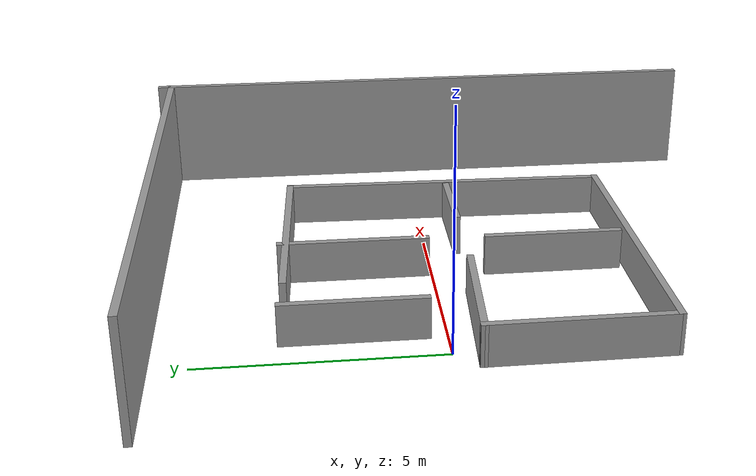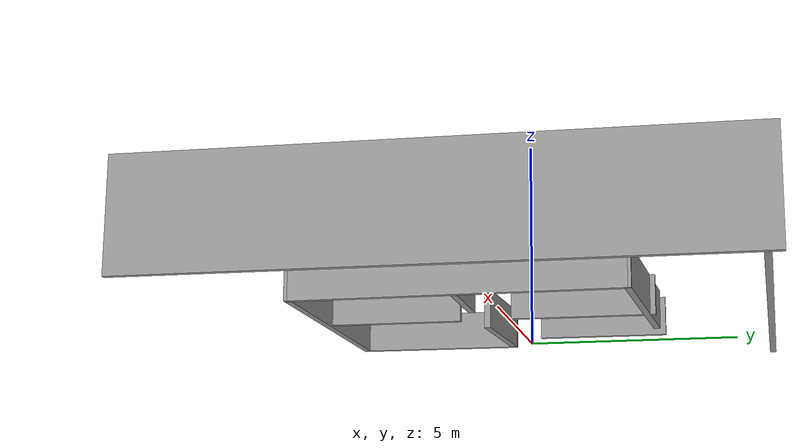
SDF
<?xml version='1.0'?>
<sdf version='1.7'>
  <model name='TMR2024'>
    <pose>3.61024 -0.475486 0 0 -0 0</pose>
    <link name='Wall_0'>
      <collision name='Wall_0_Collision'>
        <geometry>
          <box>
            <size>7 0.15 0.9</size>
          </box>
        </geometry>
        <pose>0 0 0.45 0 -0 0</pose>
      </collision>
      <visual name='Wall_0_Visual'>
        <pose>0 0 0.45 0 -0 0</pose>
        <geometry>
          <box>
            <size>7 0.15 0.9</size>
          </box>
        </geometry>
        <material>
          <script>
            <uri>file://media/materials/scripts/gazebo.material</uri>
            <name>Gazebo/Grey</name>
          </script>
          <ambient>1 1 1 1</ambient>
        </material>
        <meta>
          <layer>0</layer>
        </meta>
      </visual>
      <pose>-0.622244 -3.81451 0 0 -0 3.14159</pose>
    </link>
    <link name='Wall_10'>
      <collision name='Wall_10_Collision'>
        <geometry>
          <box>
            <size>3 0.15 0.9</size>
          </box>
        </geometry>
        <pose>0 0 0.45 0 -0 0</pose>
      </collision>
      <visual name='Wall_10_Visual'>
        <pose>0 0 0.45 0 -0 0</pose>
        <geometry>
          <box>
            <size>3 0.15 0.9</size>
          </box>
        </geometry>
        <material>
          <script>
            <uri>file://media/materials/scripts/gazebo.material</uri>
            <name>Gazebo/Grey</name>
          </script>
          <ambient>1 1 1 1</ambient>
        </material>
        <meta>
          <layer>0</layer>
        </meta>
      </visual>
      <pose>-2.88724 2.31049 0 0 -0 -1.5708</pose>
    </link>
    <link name='Wall_12'>
      <collision name='Wall_12_Collision'>
        <geometry>
          <box>
            <size>2 0.15 0.9</size>
          </box>
        </geometry>
        <pose>0 0 0.45 0 -0 0</pose>
      </collision>
      <visual name='Wall_12_Visual'>
        <pose>0 0 0.45 0 -0 0</pose>
        <geometry>
          <box>
            <size>2 0.15 0.9</size>
          </box>
        </geometry>
        <material>
          <script>
            <uri>file://media/materials/scripts/gazebo.material</uri>
            <name>Gazebo/Grey</name>
          </script>
          <ambient>1 1 1 1</ambient>
        </material>
        <meta>
          <layer>0</layer>
        </meta>
      </visual>
      <pose>1.76676 -0.204514 0 0 -0 0</pose>
    </link>
    <link name='Wall_14'>
      <collision name='Wall_14_Collision'>
        <geometry>
          <box>
            <size>3 0.15 0.9</size>
          </box>
        </geometry>
        <pose>0 0 0.45 0 -0 0</pose>
      </collision>
      <visual name='Wall_14_Visual'>
        <pose>0 0 0.45 0 -0 0</pose>
        <geometry>
          <box>
            <size>3 0.15 0.9</size>
          </box>
        </geometry>
        <material>
          <script>
            <uri>file://media/materials/scripts/gazebo.material</uri>
            <name>Gazebo/Grey</name>
          </script>
          <ambient>1 1 1 1</ambient>
        </material>
        <meta>
          <layer>0</layer>
        </meta>
      </visual>
      <pose>-0.249243 -2.15651 0 0 -0 -1.5708</pose>
    </link>
    <link name='Wall_16'>
      <collision name='Wall_16_Collision'>
        <geometry>
          <box>
            <size>3.25 0.15 0.9</size>
          </box>
        </geometry>
        <pose>0 0 0.45 0 -0 0</pose>
      </collision>
      <visual name='Wall_16_Visual'>
        <pose>0 0 0.45 0 -0 0</pose>
        <geometry>
          <box>
            <size>3.25 0.15 0.9</size>
          </box>
        </geometry>
        <material>
          <script>
            <uri>file://media/materials/scripts/gazebo.material</uri>
            <name>Gazebo/Grey</name>
          </script>
          <ambient>1 1 1 1</ambient>
        </material>
        <meta>
          <layer>0</layer>
        </meta>
      </visual>
      <pose>-0.178244 2.15449 0 0 -0 1.5708</pose>
    </link>
    <link name='Wall_18'>
      <collision name='Wall_18_Collision'>
        <geometry>
          <box>
            <size>12 0.15 2.5</size>
          </box>
        </geometry>
        <pose>0 0 1.25 0 -0 0</pose>
      </collision>
      <visual name='Wall_18_Visual'>
        <pose>0 0 1.25 0 -0 0</pose>
        <geometry>
          <box>
            <size>12 0.15 2.5</size>
          </box>
        </geometry>
        <material>
          <script>
            <uri>file://media/materials/scripts/gazebo.material</uri>
            <name>Gazebo/Grey</name>
          </script>
          <ambient>1 1 1 1</ambient>
        </material>
        <meta>
          <layer>0</layer>
        </meta>
      </visual>
      <pose>-0.01759 6.30375 0 0 -0 3.14159</pose>
    </link>
    <link name='Wall_2'>
      <collision name='Wall_2_Collision'>
        <geometry>
          <box>
            <size>3.91962 0.15 0.9</size>
          </box>
        </geometry>
        <pose>0 0 0.45 0 -0 0</pose>
      </collision>
      <visual name='Wall_2_Visual'>
        <pose>0 0 0.45 0 -0 0</pose>
        <geometry>
          <box>
            <size>3.91962 0.15 0.9</size>
          </box>
        </geometry>
        <material>
          <script>
            <uri>file://media/materials/scripts/gazebo.material</uri>
            <name>Gazebo/Grey</name>
          </script>
          <ambient>1 1 1 1</ambient>
        </material>
        <meta>
          <layer>0</layer>
        </meta>
      </visual>
      <pose>-4.05974 -1.92951 0 0 -0 -1.56417</pose>
    </link>
    <link name='Wall_21'>
      <collision name='Wall_21_Collision'>
        <geometry>
          <box>
            <size>13.25 0.15 2.5</size>
          </box>
        </geometry>
        <pose>0 0 1.25 0 -0 0</pose>
      </collision>
      <visual name='Wall_21_Visual'>
        <pose>0 0 1.25 0 -0 0</pose>
        <geometry>
          <box>
            <size>13.25 0.15 2.5</size>
          </box>
        </geometry>
        <material>
          <script>
            <uri>file://media/materials/scripts/gazebo.material</uri>
            <name>Gazebo/Grey</name>
          </script>
          <ambient>1 1 1 1</ambient>
        </material>
        <meta>
          <layer>0</layer>
        </meta>
      </visual>
      <pose>5.94259 -0 0 0 -0 -1.5708</pose>
    </link>
    <link name='Wall_4'>
      <collision name='Wall_4_Collision'>
        <geometry>
          <box>
            <size>3.00069 0.15 0.9</size>
          </box>
        </geometry>
        <pose>0 0 0.45 0 -0 0</pose>
      </collision>
      <visual name='Wall_4_Visual'>
        <pose>0 0 0.45 0 -0 0</pose>
        <geometry>
          <box>
            <size>3.00069 0.15 0.9</size>
          </box>
        </geometry>
        <material>
          <script>
            <uri>file://media/materials/scripts/gazebo.material</uri>
            <name>Gazebo/Grey</name>
          </script>
          <ambient>1 1 1 1</ambient>
        </material>
        <meta>
          <layer>0</layer>
        </meta>
      </visual>
      <pose>-2.64874 -0.124514 0 0 -0 3.08545</pose>
    </link>
    <link name='Wall_6'>
      <collision name='Wall_6_Collision'>
        <geometry>
          <box>
            <size>7.42009 0.15 0.9</size>
          </box>
        </geometry>
        <pose>0 0 0.45 0 -0 0</pose>
      </collision>
      <visual name='Wall_6_Visual'>
        <pose>0 0 0.45 0 -0 0</pose>
        <geometry>
          <box>
            <size>7.42009 0.15 0.9</size>
          </box>
        </geometry>
        <material>
          <script>
            <uri>file://media/materials/scripts/gazebo.material</uri>
            <name>Gazebo/Grey</name>
          </script>
          <ambient>1 1 1 1</ambient>
        </material>
        <meta>
          <layer>0</layer>
        </meta>
      </visual>
      <pose>2.87776 -0.180014 0 0 -0 -1.59143</pose>
    </link>
    <link name='Wall_8'>
      <collision name='Wall_8_Collision'>
        <geometry>
          <box>
            <size>5.0444 0.15 0.9</size>
          </box>
        </geometry>
        <pose>0 0 0.45 0 -0 0</pose>
      </collision>
      <visual name='Wall_8_Visual'>
        <pose>0 0 0.45 0 -0 0</pose>
        <geometry>
          <box>
            <size>5.0444 0.15 0.9</size>
          </box>
        </geometry>
        <material>
          <script>
            <uri>file://media/materials/scripts/gazebo.material</uri>
            <name>Gazebo/Grey</name>
          </script>
          <ambient>1 1 1 1</ambient>
        </material>
        <meta>
          <layer>0</layer>
        </meta>
      </visual>
      <pose>0.507756 3.55999 0 0 -0 -0.043123</pose>
    </link>
    <static>1</static>
  </model>
</sdf>
